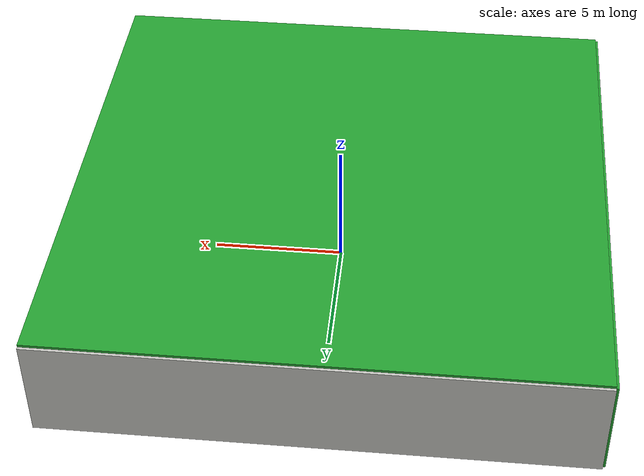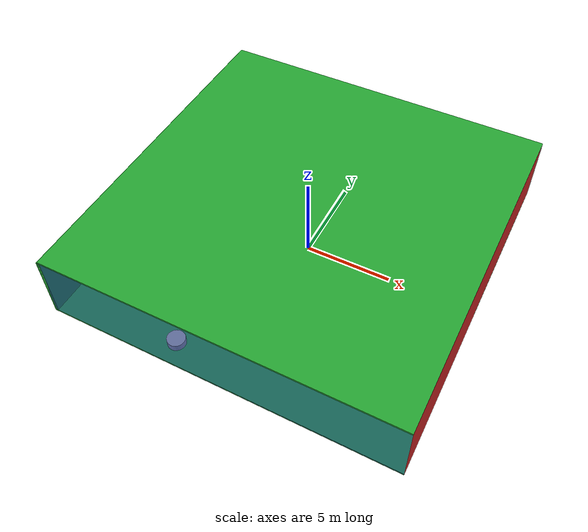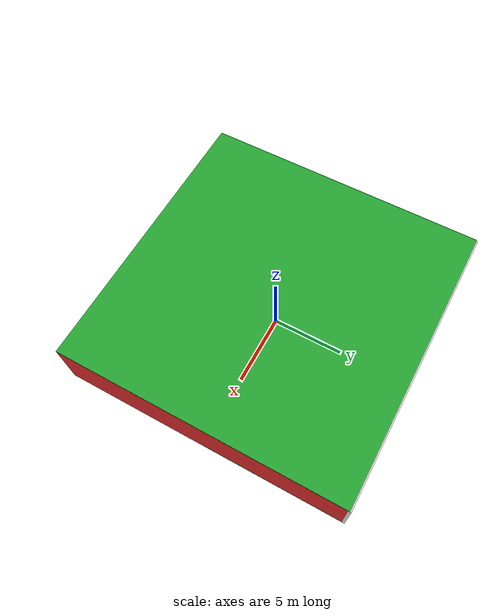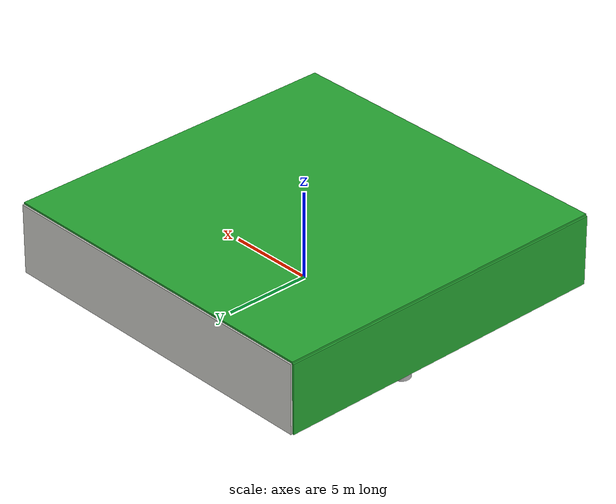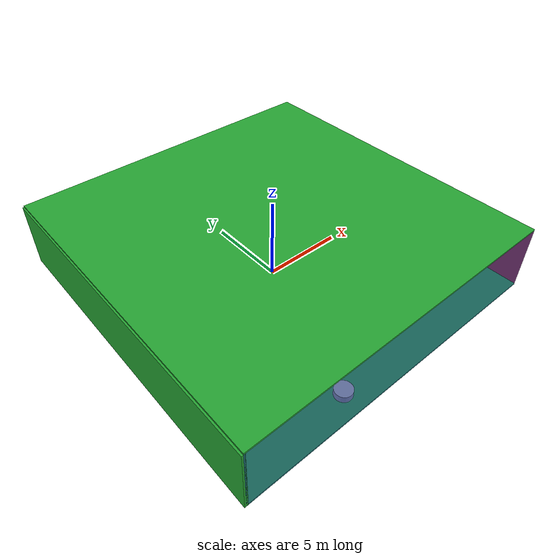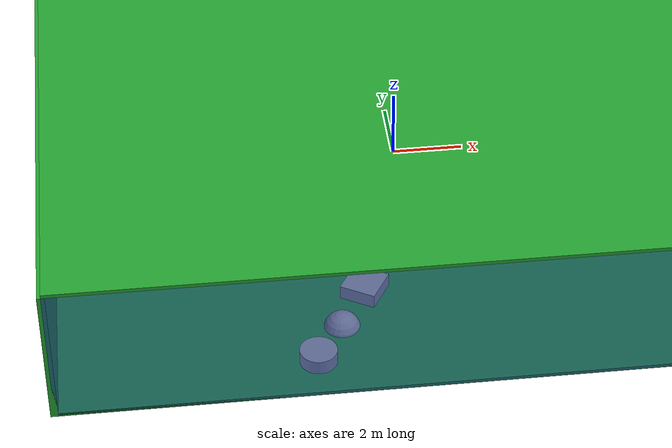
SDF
<sdf version="1.4">
 <world name="default">
  <physics type="ode">
   <max_step_size>0.001</max_step_size>
   <real_time_factor>1</real_time_factor>
   <real_time_update_rate>1000</real_time_update_rate>
   <gravity>0 0 -9.8</gravity>
  </physics>
  <scene><ambient>0.4 0.4 0.4 1</ambient><background>0.7 0.7 0.7 1</background><shadows>1</shadows></scene>
  <model name="Surrounding">
   <static>1</static>
   <link name="Ceiling">
    <collision name="Ceiling_Collision"><geometry><box><size>20 20 0.1</size></box></geometry></collision>
    <visual name="Ceiling_Visual">
     <geometry><box><size>20 20 0.1</size></box></geometry>
     <material>
      <script><uri>file://media/materials/scripts/gazebo.material</uri><name>Gazebo/GreenGlow</name></script>
     </material>
    </visual>
    <pose>0 0 4.05 0 0 0</pose>
   </link>
   <link name="Wall_South">
    <collision name="Wall_South_Collision">
     <geometry><box><size>20 0 4</size></box></geometry>
     <pose>0 0 2 0 -0 0</pose>
    </collision>
    <visual name="Wall_South_Visual">
     <pose>0 0 2 0 -0 0</pose>
     <geometry><box><size>20 0 4</size></box></geometry>
     <material>
      <script><uri>file://media/materials/scripts/gazebo.material</uri><name>Gazebo/BlueTransparent</name></script>
     </material>
    </visual>
    <velocity_decay><linear>0</linear><angular>0</angular></velocity_decay>
    <pose>0 -10 0 0 -0 0</pose>
   </link>
   <link name="Wall_East">
    <collision name="Wall_21_Collision">
     <geometry><box><size>20 0 4</size></box></geometry>
     <pose>0 0 2 0 -0 0</pose>
    </collision>
    <visual name="Wall_21_Visual">
     <pose>0 0 2 0 -0 0</pose>
     <geometry><box><size>20 0 4</size></box></geometry>
     <material>
      <script><uri>file://media/materials/scripts/gazebo.material</uri><name>Gazebo/Red</name></script>
     </material>
    </visual>
    <velocity_decay><linear>0</linear><angular>0</angular></velocity_decay>
    <pose>10 0 0 0 -0 1.5708</pose>
   </link>
   <link name="Wall_North">
    <collision name="Wall_22_Collision">
     <geometry><box><size>20 0.2 4</size></box></geometry>
     <pose>0 0 2 0 -0 0</pose>
    </collision>
    <visual name="Wall_22_Visual">
     <pose>0 0 2 0 -0 0</pose>
     <geometry><box><size>20 0.2 4</size></box></geometry>
     <material>
      <script><uri>file://media/materials/scripts/gazebo.material</uri><name>Gazebo/CeilingTiled</name></script>
     </material>
    </visual>
    <velocity_decay><linear>0</linear><angular>0</angular></velocity_decay>
    <pose>0 10 0 0 -0 0</pose>
   </link>
   <link name="Wall_West">
    <collision name="Wall_23_Collision">
     <geometry><box><size>20 0.2 4</size></box></geometry>
     <pose>0 0 2 0 -0 0</pose>
    </collision>
    <visual name="Wall_23_Visual">
     <pose>0 0 2 0 -0 0</pose>
     <geometry><box><size>20 0.2 4</size></box></geometry>
     <material>
      <script><uri>file://media/materials/scripts/gazebo.material</uri><name>Gazebo/GreenGlow</name></script>
     </material>
    </visual>
    <velocity_decay><linear>0</linear><angular>0</angular></velocity_decay>
    <pose>-10 0 0 0 0 -1.5708</pose>
   </link>
   <link name="Ground_link">
    <collision name="collision">
     <pose>0 0 .05 0 -0 0</pose>
     <geometry><box><size>20 20 0.1</size></box></geometry>
    </collision>
    <visual name="visual">
     <pose>0 0 .05 0 -0 0</pose>
     <geometry><box><size>20 20 0.1</size></box></geometry>
     <material>
      <script><uri>file://media/materials/scripts/gazebo.material</uri><name>Gazebo/Green</name></script>
     </material>
    </visual>
   </link>
   <static>1</static>
  </model>
  <spherical_coordinates>
   <surface_model>EARTH_WGS84</surface_model>
   <latitude_deg>0</latitude_deg>
   <longitude_deg>0</longitude_deg>
   <elevation>0</elevation>
   <heading_deg>0</heading_deg>
  </spherical_coordinates>
  <light name="lightball_0" type="diffuse">
   <diffuse>0.8 0.8 0.8 1</diffuse>
   <specular>0.2 0.2 0.2 1</specular>
   <attenuation>
    <range>100</range>
    <constant>0.7</constant>
    <linear>0.01</linear>
    <quadratic>0.001</quadratic>
   </attenuation>
   <direction>-0.5 0.1 -0.9</direction>
   <pose>-4.65972911292 -1.8487672875 0.631625325106 0 0 0</pose>
  </light>
  <light name="lightball_1" type="diffuse">
   <diffuse>0.8 0.8 0.8 1</diffuse>
   <specular>0.2 0.2 0.2 1</specular>
   <attenuation>
    <range>100</range>
    <constant>0.7</constant>
    <linear>0.01</linear>
    <quadratic>0.001</quadratic>
   </attenuation>
   <direction>-0.5 0.1 -0.9</direction>
   <pose>4.78631820576 4.43574483213 3.82075287179 0 0 0</pose>
  </light>
  <light name="lightball_2" type="diffuse">
   <diffuse>0.8 0.8 0.8 1</diffuse>
   <specular>0.2 0.2 0.2 1</specular>
   <attenuation>
    <range>100</range>
    <constant>0.7</constant>
    <linear>0.01</linear>
    <quadratic>0.001</quadratic>
   </attenuation>
   <direction>-0.5 0.1 -0.9</direction>
   <pose>5.93437579649 -2.61742364322 2.59800744887 0 0 0</pose>
  </light>
  <light name="lightball_3" type="diffuse">
   <diffuse>0.8 0.8 0.8 1</diffuse>
   <specular>0.2 0.2 0.2 1</specular>
   <attenuation>
    <range>100</range>
    <constant>0.7</constant>
    <linear>0.01</linear>
    <quadratic>0.001</quadratic>
   </attenuation>
   <direction>-0.5 0.1 -0.9</direction>
   <pose>-2.21498864605 9.75203980253 3.2677171443 0 0 0</pose>
  </light>
  <light name="lightball_4" type="diffuse">
   <diffuse>0.8 0.8 0.8 1</diffuse>
   <specular>0.2 0.2 0.2 1</specular>
   <attenuation>
    <range>100</range>
    <constant>0.7</constant>
    <linear>0.01</linear>
    <quadratic>0.001</quadratic>
   </attenuation>
   <direction>-0.5 0.1 -0.9</direction>
   <pose>-1.28873778564 -1.73416704163 2.60074523151 0 0 0</pose>
  </light>
  <light name="lightball_5" type="diffuse">
   <diffuse>0.8 0.8 0.8 1</diffuse>
   <specular>0.2 0.2 0.2 1</specular>
   <attenuation>
    <range>100</range>
    <constant>0.7</constant>
    <linear>0.01</linear>
    <quadratic>0.001</quadratic>
   </attenuation>
   <direction>-0.5 0.1 -0.9</direction>
   <pose>5.75543370595 -0.104906911941 1.17709689804 0 0 0</pose>
  </light>
  <include>
   <uri>model://textured_shapes</uri>
   <pose>-7.93406676786 2.62356909553 0 0 0 1.8812289874</pose>
  </include>
  <include>
   <uri>model://robocup_3Dsim_goal</uri>
   <pose>-4.45623232347 -3.42695566344 0 0 0 2.24540793628</pose>
  </include>
  <include><uri>model://cabinet</uri><pose>-4.77298934626 5.62636392544 0 0 0 0.512772707626</pose></include>
  <include>
   <uri>model://textured_shapes</uri>
   <pose>-2.35247170207 -7.51807429577 0 0 0 2.61366874194</pose>
  </include>
  <include><uri>model://cabinet</uri><pose>8.22601527928 0.313167235685 0 0 0 2.39846528432</pose></include>
  <include><uri>model://cabinet</uri><pose>7.01326706297 3.77421533445 0 0 0 1.71469407785</pose></include>
 </world>
</sdf>

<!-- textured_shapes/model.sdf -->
<sdf version="1.6">
  <model name="textured_shapes">
    <pose>0 0 0.5 0 0 0</pose>
    <link name="box">
      <pose>0 -1.5 0 0 0 0</pose>
      <collision name="collision">
        <geometry>
          <box>
            <size>1 1 1</size>
          </box>
        </geometry>
      </collision>
      <visual name="visual">
        <geometry>
          <box>
            <size>1 1 1</size>
          </box>
        </geometry>
        <material>
          <script>
            <uri>model://../model_source/models/textured_shapes/materials/scripts</uri>
            <uri>model://../model_source/models/textured_shapes/materials/textures</uri>
            <name>TexturedShape/Squares</name>
          </script>
        </material>
      </visual>
    </link>
    <link name="sphere">
      <collision name="collision">
        <geometry>
          <sphere>
            <radius>0.5</radius>
          </sphere>
        </geometry>
      </collision>
      <visual name="visual">
        <geometry>
          <sphere>
            <radius>0.5</radius>
          </sphere>
        </geometry>
        <material>
          <script>
            <uri>model://../model_source/models/textured_shapes/materials/scripts</uri>
            <uri>model://../model_source/models/textured_shapes/materials/textures</uri>
            <name>TexturedShape/Squares</name>
          </script>
        </material>
      </visual>
    </link>
    <link name="cylinder">
      <pose>0 1.5 0 0 0 0</pose>
      <collision name="collision">
        <geometry>
          <cylinder>
            <radius>0.5</radius>
            <length>1</length>
          </cylinder>
        </geometry>
      </collision>
      <visual name="visual">
        <geometry>
          <cylinder>
            <radius>0.5</radius>
            <length>1</length>
          </cylinder>
        </geometry>
        <material>
          <script>
            <uri>model://../model_source/models/textured_shapes/materials/scripts</uri>
            <uri>model://../model_source/models/textured_shapes/materials/textures</uri>
            <name>TexturedShape/Squares</name>
          </script>
        </material>
      </visual>
    </link>
  </model>
</sdf>

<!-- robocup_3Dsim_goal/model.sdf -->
<sdf version="1.5">
  <model name="robocup_3d_goal">
    <static>true</static>
    <link name="left_post">
      <pose>0 1.05 0.45 0 0 0</pose>
      <collision name="collision">
        <geometry>
          <cylinder>
            <radius>0.05</radius>
            <length>0.9</length>
          </cylinder>
        </geometry>
      </collision>
      <visual name="visual">
        <geometry>
          <cylinder>
            <radius>0.05</radius>
            <length>0.9</length>
          </cylinder>
        </geometry>
        <material>
          <script>
            <uri>file://media/materials/scripts/gazebo.material</uri>
            <name>Gazebo/ZincYellow</name>
          </script>
        </material>
      </visual>
    </link>
    <link name="left_support_horiz_lower">
      <pose>0.30 1.05 0.01 0 0 0</pose>
      <collision name="collision">
        <geometry>
          <box>
            <size>0.50 0.02 0.02</size>
          </box>
        </geometry>
      </collision>
      <visual name="visual">
        <geometry>
          <box>
            <size>0.50 0.02 0.02</size>
          </box>
        </geometry>
        <material>
          <script>
            <uri>file://media/materials/scripts/gazebo.material</uri>
            <name>Gazebo/White</name>
          </script>
        </material>
      </visual>
    </link>
    <link name="left_support_horiz_upper">
      <pose>0.30 1.05 0.79 0 0 0</pose>
      <collision name="collision">
        <geometry>
          <box>
            <size>0.50 0.02 0.02</size>
          </box>
        </geometry>
      </collision>
      <visual name="visual">
        <geometry>
          <box>
            <size>0.50 0.02 0.02</size>
          </box>
        </geometry>
        <material>
          <script>
            <uri>file://media/materials/scripts/gazebo.material</uri>
            <name>Gazebo/White</name>
          </script>
        </material>
      </visual>
    </link>
    <link name="left_support_vertical">
      <pose>0.56 1.05 0.4 0 1.5708 0</pose>
      <collision name="collision">
        <geometry>
          <box>
            <size>0.80 0.02 0.02</size>
          </box>
        </geometry>
      </collision>
      <visual name="visual">
        <geometry>
          <box>
            <size>0.80 0.02 0.02</size>
          </box>
        </geometry>
        <material>
          <script>
            <uri>file://media/materials/scripts/gazebo.material</uri>
            <name>Gazebo/White</name>
          </script>
        </material>
      </visual>
    </link>
    <link name="right_support_horiz_lower">
      <pose>0.30 -1.05 0.01 0 0 0</pose>
      <collision name="collision">
        <geometry>
          <box>
            <size>0.50 0.02 0.02</size>
          </box>
        </geometry>
      </collision>
      <visual name="visual">
        <geometry>
          <box>
            <size>0.50 0.02 0.02</size>
          </box>
        </geometry>
        <material>
          <script>
            <uri>file://media/materials/scripts/gazebo.material</uri>
            <name>Gazebo/White</name>
          </script>
        </material>
      </visual>
    </link>
    <link name="right_support_horiz_upper">
      <pose>0.30 -1.05 0.79 0 0 0</pose>
      <collision name="collision">
        <geometry>
          <box>
            <size>0.50 0.02 0.02</size>
          </box>
        </geometry>
      </collision>
      <visual name="visual">
        <geometry>
          <box>
            <size>0.50 0.02 0.02</size>
          </box>
        </geometry>
        <material>
          <script>
            <uri>file://media/materials/scripts/gazebo.material</uri>
            <name>Gazebo/White</name>
          </script>
        </material>
      </visual>
    </link>
    <link name="right_support_vertical">
      <pose>0.56 -1.05 0.4 0 1.5708 0</pose>
      <collision name="collision">
        <geometry>
          <box>
            <size>0.80 0.02 0.02</size>
          </box>
        </geometry>
      </collision>
      <visual name="visual">
        <geometry>
          <box>
            <size>0.80 0.02 0.02</size>
          </box>
        </geometry>
        <material>
          <script>
            <uri>file://media/materials/scripts/gazebo.material</uri>
            <name>Gazebo/White</name>
          </script>
        </material>
      </visual>
    </link>
    <link name="center_support_horiz_lower">
      <pose>0.56 0 0.01 0 1.5708 0</pose>
      <collision name="collision">
        <geometry>
          <box>
            <size>0.02 2.08 0.02</size>
          </box>
        </geometry>
      </collision>
      <visual name="visual">
        <geometry>
          <box>
            <size>0.02 2.08 0.02</size>
          </box>
        </geometry>
        <material>
          <script>
            <uri>file://media/materials/scripts/gazebo.material</uri>
            <name>Gazebo/White</name>
          </script>
        </material>
      </visual>
    </link>
    <link name="center_support_horiz_upper">
      <pose>0.56 0 0.79 0 1.5708 0</pose>
      <collision name="collision">
        <geometry>
          <box>
            <size>0.02 2.08 0.02</size>
          </box>
        </geometry>
      </collision>
      <visual name="visual">
        <geometry>
          <box>
            <size>0.02 2.08 0.02</size>
          </box>
        </geometry>
        <material>
          <script>
            <uri>file://media/materials/scripts/gazebo.material</uri>
            <name>Gazebo/White</name>
          </script>
        </material>
      </visual>
    </link>
    <link name="right_post">
      <pose>0 -1.05 0.45 0 0 0</pose>
      <collision name="collision">
        <geometry>
          <cylinder>
            <radius>0.05</radius>
            <length>0.9</length>
          </cylinder>
        </geometry>
      </collision>
      <visual name="visual">
        <geometry>
          <cylinder>
            <radius>0.05</radius>
            <length>0.9</length>
          </cylinder>
        </geometry>
        <material>
          <script>
            <uri>file://media/materials/scripts/gazebo.material</uri>
            <name>Gazebo/ZincYellow</name>
          </script>
        </material>
      </visual>
    </link>
    <link name="crossbar">
      <pose>0 0 0.85 1.57 1.57 0</pose>
      <collision name="collision">
        <geometry>
          <cylinder>
            <radius>0.05</radius>
            <length>2.0</length>
          </cylinder>
        </geometry>
      </collision>
      <visual name="visual">
        <geometry>
          <cylinder>
            <radius>0.05</radius>
            <length>2.0</length>
          </cylinder>
        </geometry>
        <material>
          <script>
            <uri>file://media/materials/scripts/gazebo.material</uri>
            <name>Gazebo/ZincYellow</name>
          </script>
        </material>
      </visual>
    </link>
    <link name="center_net">
      <pose>0.56 0 0.40 0 0 0</pose>
      <collision name="collision">
        <geometry>
          <box>
            <size>0.01 2.1 0.80</size>
          </box>
        </geometry>
      </collision>
      <visual name="visual">
        <geometry>
          <box>
            <size>0.01 2.1 0.80</size>
          </box>
        </geometry>
        <material>
          <script>
            <uri>model://../model_source/models/robocup09_spl_field/materials/scripts/</uri>
            <uri>model://../model_source/models/robocup09_spl_field/materials/textures/</uri>
            <name>RoboCup/Net</name>
          </script>
        </material>
      </visual>
    </link>
    <link name="left_net">
      <pose>0.30 1.05 0.40 0 0 0</pose>
      <collision name="collision">
        <geometry>
          <box>
            <size>0.50 0.01 0.76</size>
          </box>
        </geometry>
      </collision>
      <visual name="visual">
        <geometry>
          <box>
            <size>0.50 0.01 0.76</size>
          </box>
        </geometry>
        <material>
          <script>
            <uri>model://../model_source/models/robocup09_spl_field/materials/scripts/</uri>
            <uri>model://../model_source/models/robocup09_spl_field/materials/textures/</uri>
            <name>RoboCup/Net</name>
          </script>
        </material>
      </visual>
    </link>
    <link name="right_net">
      <pose>0.30 -1.05 0.40 0 0 0</pose>
      <collision name="collision">
        <geometry>
          <box>
            <size>0.50 0.01 0.76</size>
          </box>
        </geometry>
      </collision>
      <visual name="visual">
        <geometry>
          <box>
            <size>0.50 0.01 0.76</size>
          </box>
        </geometry>
        <material>
          <script>
            <uri>model://../model_source/models/robocup09_spl_field/materials/scripts/</uri>
            <uri>model://../model_source/models/robocup09_spl_field/materials/textures/</uri>
            <name>RoboCup/Net</name>
          </script>
        </material>
      </visual>
    </link>
  </model>
</sdf>

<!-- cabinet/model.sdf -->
<sdf version="1.5">
  <model name="cabinet">
    <static>true</static>
    <link name="cabinet_bottom_plate">
      <inertial>
        <pose>0 0 -1 0 0 0</pose>
        <inertia>
          <ixx>2.050000</ixx>
          <ixy>0</ixy>
          <ixz>0</ixz>
          <iyy>2.050000</iyy>
          <iyz>0</iyz>
          <izz>2.050000</izz>
        </inertia>
        <mass>25.000000</mass>
      </inertial>
      <collision name="cabinet_bottom_plate_geom">
        <pose>0 0 0.010000 0 0 0</pose>
        <geometry>
          <box>
            <size>0.450000 0.450000 0.020000</size>
          </box>
        </geometry>
      </collision>
      <visual name="cabinet_bottom_plate_geom_visual">
        <pose>0 0 0.010000 0 0 0</pose>
        <geometry>
          <box>
            <size>0.450000 0.450000 0.020000</size>
          </box>
        </geometry>
        <material>
          <script>
            <uri>model://media/materials/scripts/gazebo.material</uri>
            <name>Gazebo/Wood</name>
          </script>
        </material>
      </visual>
      <collision name="cabinet_bottom_plate_geom_cabinet_back_plate">
        <pose>0.235000 0 0.510000 0 0 0</pose>
        <geometry>
          <box>
            <size>0.020000 0.450000 1.020000</size>
          </box>
        </geometry>
      </collision>
      <visual name="cabinet_bottom_plate_geom_cabinet_back_plate_visual">
        <pose>0.235000 0 0.510000 0 0 0</pose>
        <geometry>
          <box>
            <size>0.020000 0.450000 1.020000</size>
          </box>
        </geometry>
        <material>
          <script>
            <uri>model://media/materials/scripts/gazebo.material</uri>
            <name>Gazebo/Wood</name>
          </script>
        </material>
      </visual>
      <collision name="cabinet_bottom_plate_geom_cabinet_left_plate">
        <pose>0 0.235000 0.510000 0 0 0</pose>
        <geometry>
          <box>
            <size>0.450000 0.020000 1.020000</size>
          </box>
        </geometry>
      </collision>
      <visual name="cabinet_bottom_plate_geom_cabinet_left_plate_visual">
        <pose>0 0.235000 0.510000 0 0 0</pose>
        <geometry>
          <box>
            <size>0.450000 0.020000 1.020000</size>
          </box>
        </geometry>
        <material>
          <script>
            <uri>model://media/materials/scripts/gazebo.material</uri>
            <name>Gazebo/Wood</name>
          </script>
        </material>
      </visual>
      <collision name="cabinet_bottom_plate_geom_cabinet_middle_plate">
        <pose>0 0 0.510000 0 0 0</pose>
        <geometry>
          <box>
            <size>0.450000 0.450000 0.020000</size>
          </box>
        </geometry>
      </collision>
      <visual name="cabinet_bottom_plate_geom_cabinet_middle_plate_visual">
        <pose>0 0 0.510000 0 0 0</pose>
        <geometry>
          <box>
            <size>0.450000 0.450000 0.020000</size>
          </box>
        </geometry>
        <material>
          <script>
            <uri>model://media/materials/scripts/gazebo.material</uri>
            <name>Gazebo/Wood</name>
          </script>
        </material>
      </visual>
      <collision name="cabinet_bottom_plate_geom_cabinet_right_plate">
        <pose>0 -0.235000 0.510000 0 0 0</pose>
        <geometry>
          <box>
            <size>0.450000 0.020000 1.020000</size>
          </box>
        </geometry>
      </collision>
      <visual name="cabinet_bottom_plate_geom_cabinet_right_plate_visual">
        <pose>0 -0.235000 0.510000 0 0 0</pose>
        <geometry>
          <box>
            <size>0.450000 0.020000 1.020000</size>
          </box>
        </geometry>
        <material>
          <script>
            <uri>model://media/materials/scripts/gazebo.material</uri>
            <name>Gazebo/Wood</name>
          </script>
        </material>
      </visual>
      <collision name="cabinet_bottom_plate_geom_cabinet_top_plate">
        <pose>0 0 1.010000 0 0 0</pose>
        <geometry>
          <box>
            <size>0.450000 0.450000 0.020000</size>
          </box>
        </geometry>
      </collision>
      <visual name="cabinet_bottom_plate_geom_cabinet_top_plate_visual">
        <pose>0 0 1.010000 0 0 0</pose>
        <geometry>
          <box>
            <size>0.450000 0.450000 0.020000</size>
          </box>
        </geometry>
        <material>
          <script>
            <uri>model://media/materials/scripts/gazebo.material</uri>
            <name>Gazebo/Wood</name>
          </script>
        </material>
      </visual>
    </link>
  </model>
</sdf>
